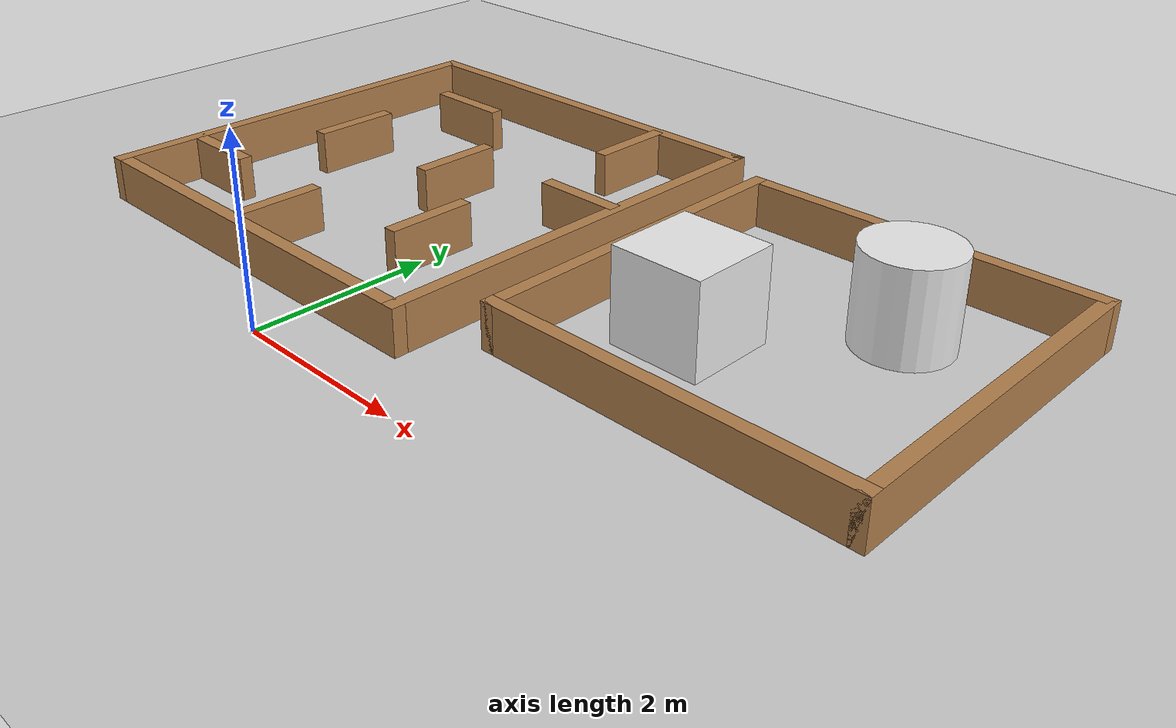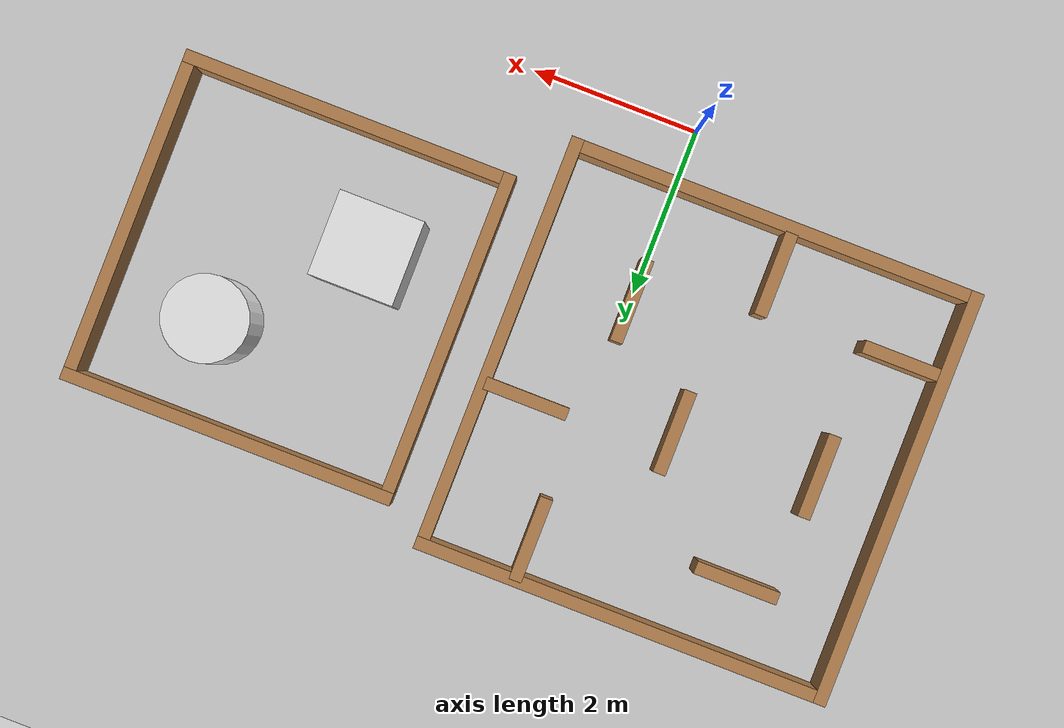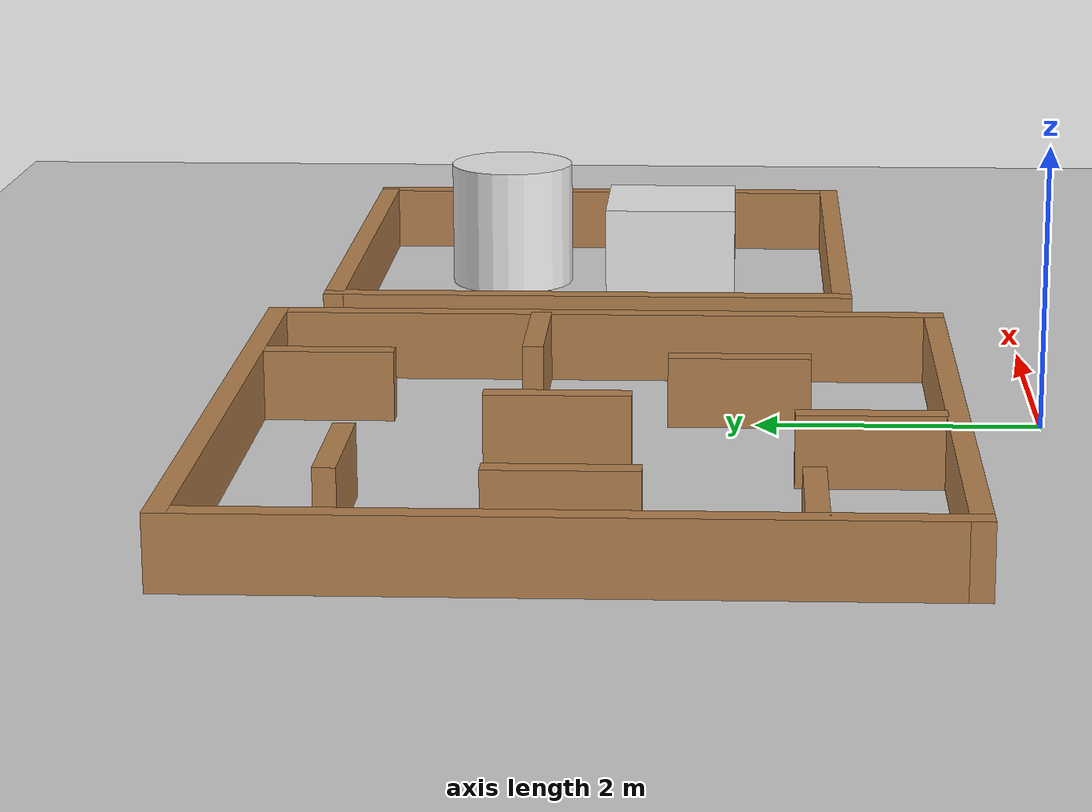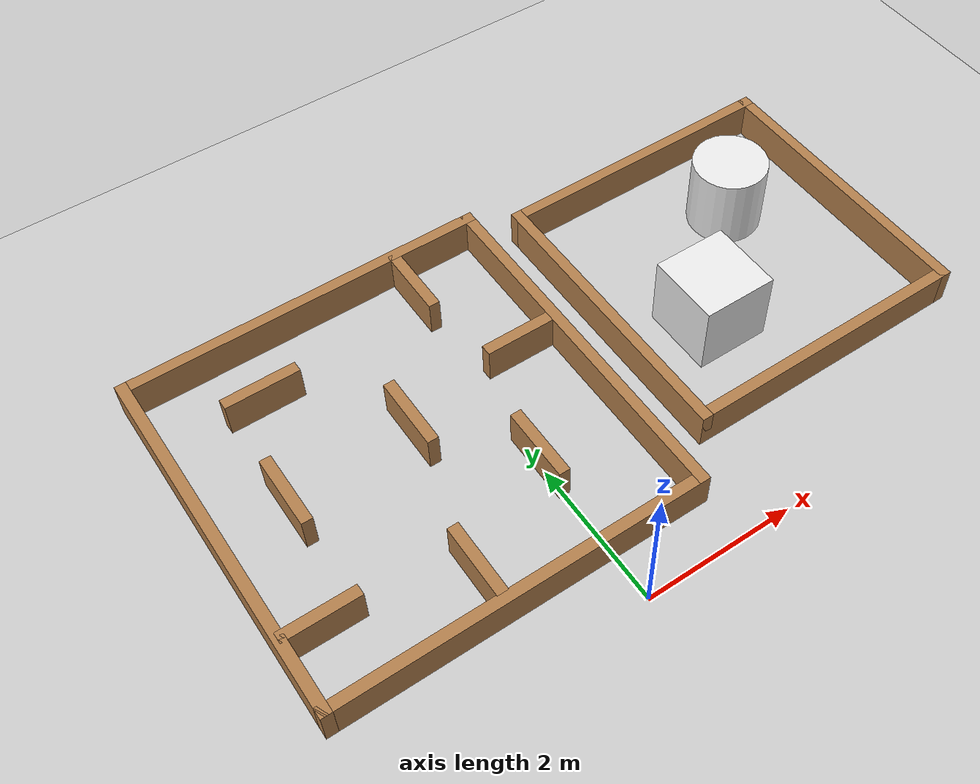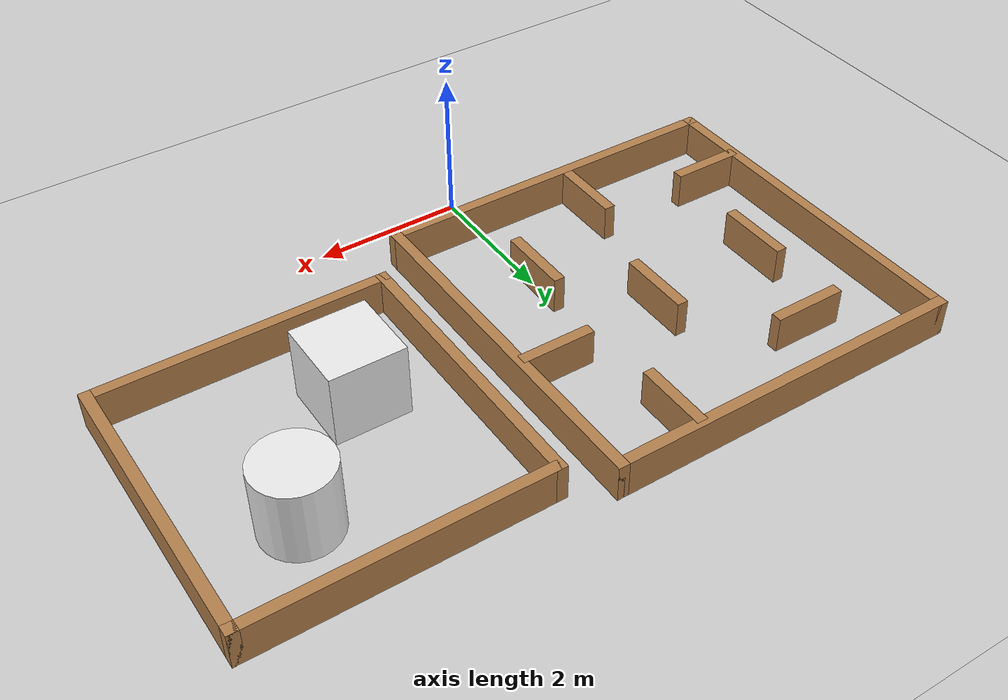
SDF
<sdf version="1.7">
 <world name="default">
  <light name="sun" type="directional">
   <pose>0 0 10 0 -0 0</pose>
   <diffuse>0.8 0.8 0.8 1</diffuse>
   <specular>0.2 0.2 0.2 1</specular>
   <attenuation>
    <range>1000</range>
    <constant>0.9</constant>
    <linear>0.01</linear>
    <quadratic>0.001</quadratic>
   </attenuation>
   <direction>-0.5 0.1 -0.9</direction>
   <spot><inner_angle>0</inner_angle><outer_angle>0</outer_angle><falloff>0</falloff></spot>
  </light>
  <model name="ground_plane">
   <static>1</static>
   <link name="link">
    <collision name="collision">
     <geometry><plane><normal>0 0 1</normal><size>100 100</size></plane></geometry>
     <surface>
      <contact><collide_bitmask>65535</collide_bitmask></contact>
      <friction><ode><mu>100</mu><mu2>50</mu2></ode></friction>
     </surface>
    </collision>
    <visual name="visual">
     <cast_shadows>0</cast_shadows>
     <geometry><plane><normal>0 0 1</normal><size>100 100</size></plane></geometry>
     <material>
      <script><uri>file://media/materials/scripts/gazebo.material</uri><name>Gazebo/Grey</name></script>
     </material>
    </visual>
   </link>
  </model>
  <gravity>0 0 -9.8</gravity>
  <magnetic_field>6e-06 2.3e-05 -4.2e-05</magnetic_field>
  <atmosphere type="adiabatic"/>
  <physics type="ode">
   <max_step_size>0.001</max_step_size>
   <real_time_factor>1</real_time_factor>
   <real_time_update_rate>1000</real_time_update_rate>
  </physics>
  <scene><ambient>0.4 0.4 0.4 1</ambient><background>0.7 0.7 0.7 1</background><shadows>1</shadows></scene>
  <spherical_coordinates>
   <surface_model>EARTH_WGS84</surface_model>
   <latitude_deg>0</latitude_deg>
   <longitude_deg>0</longitude_deg>
   <elevation>0</elevation>
   <heading_deg>0</heading_deg>
  </spherical_coordinates>
  <model name="turtlebot3_plaza">
   <pose>-1.18811 3.11626 0 0 -0 0</pose>
   <link name="Wall_0">
    <collision name="Wall_0_Collision">
     <geometry><box><size>5 0.15 0.5</size></box></geometry>
     <pose>0 0 0.25 0 -0 0</pose>
    </collision>
    <visual name="Wall_0_Visual">
     <pose>0 0 0.25 0 -0 0</pose>
     <geometry><box><size>5 0.15 0.5</size></box></geometry>
     <material>
      <script><uri>file://media/materials/scripts/gazebo.material</uri><name>Gazebo/Wood</name></script>
      <ambient>1 1 1 1</ambient>
     </material>
    </visual>
    <pose>-2.425 0 0 0 -0 1.5708</pose>
   </link>
   <link name="Wall_11">
    <collision name="Wall_11_Collision">
     <geometry><box><size>1 0.15 0.5</size></box></geometry>
     <pose>0 0 0.25 0 -0 0</pose>
    </collision>
    <visual name="Wall_11_Visual">
     <pose>0 0 0.25 0 -0 0</pose>
     <geometry><box><size>1 0.15 0.5</size></box></geometry>
     <material>
      <script><uri>file://media/materials/scripts/gazebo.material</uri><name>Gazebo/Wood</name></script>
      <ambient>1 1 1 1</ambient>
     </material>
    </visual>
    <pose>-1.937 -1.467 0 0 -0 0</pose>
   </link>
   <link name="Wall_13">
    <collision name="Wall_13_Collision">
     <geometry><box><size>1 0.15 0.5</size></box></geometry>
     <pose>0 0 0.25 0 -0 0</pose>
    </collision>
    <visual name="Wall_13_Visual">
     <pose>0 0 0.25 0 -0 0</pose>
     <geometry><box><size>1 0.15 0.5</size></box></geometry>
     <material>
      <script><uri>file://media/materials/scripts/gazebo.material</uri><name>Gazebo/Wood</name></script>
      <ambient>1 1 1 1</ambient>
     </material>
    </visual>
    <pose>-0.22 -1.866 0 0 0 -1.5708</pose>
   </link>
   <link name="Wall_15">
    <collision name="Wall_15_Collision">
     <geometry><box><size>1 0.15 0.5</size></box></geometry>
     <pose>0 0 0.25 0 -0 0</pose>
    </collision>
    <visual name="Wall_15_Visual">
     <pose>0 0 0.25 0 -0 0</pose>
     <geometry><box><size>1 0.15 0.5</size></box></geometry>
     <material>
      <script><uri>file://media/materials/scripts/gazebo.material</uri><name>Gazebo/Wood</name></script>
      <ambient>1 1 1 1</ambient>
     </material>
    </visual>
    <pose>1.195 -1.002 0 0 -0 1.5708</pose>
   </link>
   <link name="Wall_17">
    <collision name="Wall_17_Collision">
     <geometry><box><size>1 0.15 0.5</size></box></geometry>
     <pose>0 0 0.25 0 -0 0</pose>
    </collision>
    <visual name="Wall_17_Visual">
     <pose>0 0 0.25 0 -0 0</pose>
     <geometry><box><size>1 0.15 0.5</size></box></geometry>
     <material>
      <script><uri>file://media/materials/scripts/gazebo.material</uri><name>Gazebo/Wood</name></script>
      <ambient>1 1 1 1</ambient>
     </material>
    </visual>
    <pose>1.288 1.93 0 0 0 -1.5708</pose>
   </link>
   <link name="Wall_19">
    <collision name="Wall_19_Collision">
     <geometry><box><size>1 0.15 0.5</size></box></geometry>
     <pose>0 0 0.25 0 -0 0</pose>
    </collision>
    <visual name="Wall_19_Visual">
     <pose>0 0 0.25 0 -0 0</pose>
     <geometry><box><size>1 0.15 0.5</size></box></geometry>
     <material>
      <script><uri>file://media/materials/scripts/gazebo.material</uri><name>Gazebo/Wood</name></script>
      <ambient>1 1 1 1</ambient>
     </material>
    </visual>
    <pose>1.91128 0.4632 0 0 -0 0</pose>
   </link>
   <link name="Wall_2">
    <collision name="Wall_2_Collision">
     <geometry><box><size>5 0.15 0.5</size></box></geometry>
     <pose>0 0 0.25 0 -0 0</pose>
    </collision>
    <visual name="Wall_2_Visual">
     <pose>0 0 0.25 0 -0 0</pose>
     <geometry><box><size>5 0.15 0.5</size></box></geometry>
     <material>
      <script><uri>file://media/materials/scripts/gazebo.material</uri><name>Gazebo/Wood</name></script>
      <ambient>1 1 1 1</ambient>
     </material>
    </visual>
    <pose>0 2.425 0 0 -0 0</pose>
   </link>
   <link name="Wall_21">
    <collision name="Wall_21_Collision">
     <geometry><box><size>1 0.15 0.5</size></box></geometry>
     <pose>0 0 0.25 0 -0 0</pose>
    </collision>
    <visual name="Wall_21_Visual">
     <pose>0 0 0.25 0 -0 0</pose>
     <geometry><box><size>1 0.15 0.5</size></box></geometry>
     <material>
      <script><uri>file://media/materials/scripts/gazebo.material</uri><name>Gazebo/Wood</name></script>
      <ambient>1 1 1 1</ambient>
     </material>
    </visual>
    <pose>0.204 0.215 0 0 0 -1.5708</pose>
   </link>
   <link name="Wall_3">
    <collision name="Wall_3_Collision">
     <geometry><box><size>5 0.15 0.5</size></box></geometry>
     <pose>0 0 0.25 0 -0 0</pose>
    </collision>
    <visual name="Wall_3_Visual">
     <pose>0 0 0.25 0 -0 0</pose>
     <geometry><box><size>5 0.15 0.5</size></box></geometry>
     <material>
      <script><uri>file://media/materials/scripts/gazebo.material</uri><name>Gazebo/Wood</name></script>
      <ambient>1 1 1 1</ambient>
     </material>
    </visual>
    <pose>2.425 0 0 0 0 -1.5708</pose>
   </link>
   <link name="Wall_4">
    <collision name="Wall_4_Collision">
     <geometry><box><size>5 0.15 0.5</size></box></geometry>
     <pose>0 0 0.25 0 -0 0</pose>
    </collision>
    <visual name="Wall_4_Visual">
     <pose>0 0 0.25 0 -0 0</pose>
     <geometry><box><size>5 0.15 0.5</size></box></geometry>
     <material>
      <script><uri>file://media/materials/scripts/gazebo.material</uri><name>Gazebo/Wood</name></script>
      <ambient>1 1 1 1</ambient>
     </material>
    </visual>
    <pose>0 -2.425 0 0 -0 3.14159</pose>
   </link>
   <link name="Wall_7">
    <collision name="Wall_7_Collision">
     <geometry><box><size>1 0.15 0.5</size></box></geometry>
     <pose>0 0 0.25 0 -0 0</pose>
    </collision>
    <visual name="Wall_7_Visual">
     <pose>0 0 0.25 0 -0 0</pose>
     <geometry><box><size>1 0.15 0.5</size></box></geometry>
     <material>
      <script><uri>file://media/materials/scripts/gazebo.material</uri><name>Gazebo/Wood</name></script>
      <ambient>1 1 1 1</ambient>
     </material>
    </visual>
    <pose>-1.064 1.548 0 0 -0 0</pose>
   </link>
   <link name="Wall_9">
    <collision name="Wall_9_Collision">
     <geometry><box><size>1 0.15 0.5</size></box></geometry>
     <pose>0 0 0.25 0 -0 0</pose>
    </collision>
    <visual name="Wall_9_Visual">
     <pose>0 0 0.25 0 -0 0</pose>
     <geometry><box><size>1 0.15 0.5</size></box></geometry>
     <material>
      <script><uri>file://media/materials/scripts/gazebo.material</uri><name>Gazebo/Wood</name></script>
      <ambient>1 1 1 1</ambient>
     </material>
    </visual>
    <pose>-1.502 0.092 0 0 0 -1.5708</pose>
   </link>
   <static>1</static>
  </model>
  <model name="turtlebot3_square">
   <pose>3.73136 3.2723 0 0 -0 0</pose>
   <link name="Wall_0">
    <collision name="Wall_0_Collision">
     <geometry><box><size>4 0.15 0.5</size></box></geometry>
     <pose>0 0 0.25 0 -0 0</pose>
    </collision>
    <visual name="Wall_0_Visual">
     <pose>0 0 0.25 0 -0 0</pose>
     <geometry><box><size>4 0.15 0.5</size></box></geometry>
     <material>
      <script><uri>file://media/materials/scripts/gazebo.material</uri><name>Gazebo/Wood</name></script>
      <ambient>1 1 1 1</ambient>
     </material>
    </visual>
    <pose>0 1.925 0 0 -0 0</pose>
   </link>
   <link name="Wall_2">
    <collision name="Wall_2_Collision">
     <geometry><box><size>4 0.15 0.5</size></box></geometry>
     <pose>0 0 0.25 0 -0 0</pose>
    </collision>
    <visual name="Wall_2_Visual">
     <pose>0 0 0.25 0 -0 0</pose>
     <geometry><box><size>4 0.15 0.5</size></box></geometry>
     <material>
      <script><uri>file://media/materials/scripts/gazebo.material</uri><name>Gazebo/Wood</name></script>
      <ambient>1 1 1 1</ambient>
     </material>
    </visual>
    <pose>-1.925 0 0 0 0 -1.5708</pose>
   </link>
   <link name="Wall_3">
    <collision name="Wall_3_Collision">
     <geometry><box><size>4 0.15 0.5</size></box></geometry>
     <pose>0 0 0.25 0 -0 0</pose>
    </collision>
    <visual name="Wall_3_Visual">
     <pose>0 0 0.25 0 -0 0</pose>
     <geometry><box><size>4 0.15 0.5</size></box></geometry>
     <material>
      <script><uri>file://media/materials/scripts/gazebo.material</uri><name>Gazebo/Wood</name></script>
      <ambient>1 1 1 1</ambient>
     </material>
    </visual>
    <pose>0 -1.925 0 0 -0 0</pose>
   </link>
   <link name="Wall_4">
    <collision name="Wall_4_Collision">
     <geometry><box><size>4 0.15 0.5</size></box></geometry>
     <pose>0 0 0.25 0 -0 0</pose>
    </collision>
    <visual name="Wall_4_Visual">
     <pose>0 0 0.25 0 -0 0</pose>
     <geometry><box><size>4 0.15 0.5</size></box></geometry>
     <material>
      <script><uri>file://media/materials/scripts/gazebo.material</uri><name>Gazebo/Wood</name></script>
      <ambient>1 1 1 1</ambient>
     </material>
    </visual>
    <pose>1.925 0 0 0 -0 1.5708</pose>
   </link>
   <static>1</static>
  </model>
  <model name="unit_cylinder_and_square">
   <link name="link">
    <inertial>
     <mass>1</mass>
     <inertia><ixx>0.145833</ixx><ixy>0</ixy><ixz>0</ixz><iyy>0.145833</iyy><iyz>0</iyz><izz>0.125</izz></inertia>
    </inertial>
    <visual name="visual">
     <geometry><cylinder><radius>0.5</radius><length>1</length></cylinder></geometry>
     <material>
      <script><name>Gazebo/White</name><uri>file://media/materials/scripts/gazebo.material</uri></script>
      <shader type="pixel"><normal_map>__default__</normal_map></shader>
      <ambient>1 1 1 1</ambient>
      <diffuse>1 1 1 1</diffuse>
      <specular>0 0 0 1</specular>
      <emissive>0 0 0 1</emissive>
     </material>
    </visual>
    <collision name="collision">
     <geometry><cylinder><radius>0.5</radius><length>1</length></cylinder></geometry>
     <surface>
      <friction>
       <ode><mu>1</mu><mu2>1</mu2><fdir1>0 0 0</fdir1><slip1>0</slip1><slip2>0</slip2></ode>
       <torsional>
        <coefficient>1</coefficient>
        <patch_radius>0</patch_radius>
        <surface_radius>0</surface_radius>
        <use_patch_radius>1</use_patch_radius>
        <ode><slip>0</slip></ode>
       </torsional>
      </friction>
      <bounce><restitution_coefficient>0</restitution_coefficient><threshold>1e+06</threshold></bounce>
      <contact>
       <collide_without_contact>0</collide_without_contact>
       <collide_without_contact_bitmask>1</collide_without_contact_bitmask>
       <collide_bitmask>1</collide_bitmask>
       <ode>
        <soft_cfm>0</soft_cfm>
        <soft_erp>0.2</soft_erp>
        <kp>1e+13</kp>
        <kd>1</kd>
        <max_vel>0.01</max_vel>
        <min_depth>0</min_depth>
       </ode>
       <bullet>
        <split_impulse>1</split_impulse>
        <split_impulse_penetration_threshold>-0.01</split_impulse_penetration_threshold>
        <soft_cfm>0</soft_cfm>
        <soft_erp>0.2</soft_erp>
        <kp>1e+13</kp>
        <kd>1</kd>
       </bullet>
      </contact>
     </surface>
    </collision>
   </link>
   <link name="link_0">
    <inertial>
     <mass>1</mass>
     <inertia>
      <ixx>0.166667</ixx>
      <ixy>0</ixy>
      <ixz>0</ixz>
      <iyy>0.166667</iyy>
      <iyz>0</iyz>
      <izz>0.166667</izz>
     </inertia>
    </inertial>
    <pose>-1.37547 -1.36532 0 0 -0 0</pose>
    <visual name="visual">
     <geometry><box><size>1 1 1</size></box></geometry>
     <material>
      <lighting>1</lighting>
      <script><uri>file://media/materials/scripts/gazebo.material</uri><name>Gazebo/White</name></script>
      <shader type="pixel"><normal_map>__default__</normal_map></shader>
      <ambient>1 1 1 1</ambient>
      <diffuse>1 1 1 1</diffuse>
      <specular>0 0 0 1</specular>
      <emissive>0 0 0 1</emissive>
     </material>
    </visual>
    <collision name="collision">
     <geometry><box><size>1 1 1</size></box></geometry>
     <surface>
      <friction>
       <ode><mu>1</mu><mu2>1</mu2><fdir1>0 0 0</fdir1><slip1>0</slip1><slip2>0</slip2></ode>
       <torsional>
        <coefficient>1</coefficient>
        <patch_radius>0</patch_radius>
        <surface_radius>0</surface_radius>
        <use_patch_radius>1</use_patch_radius>
        <ode><slip>0</slip></ode>
       </torsional>
      </friction>
      <bounce><restitution_coefficient>0</restitution_coefficient><threshold>1e+06</threshold></bounce>
      <contact>
       <collide_without_contact>0</collide_without_contact>
       <collide_without_contact_bitmask>1</collide_without_contact_bitmask>
       <collide_bitmask>1</collide_bitmask>
       <ode>
        <soft_cfm>0</soft_cfm>
        <soft_erp>0.2</soft_erp>
        <kp>1e+13</kp>
        <kd>1</kd>
        <max_vel>0.01</max_vel>
        <min_depth>0</min_depth>
       </ode>
       <bullet>
        <split_impulse>1</split_impulse>
        <split_impulse_penetration_threshold>-0.01</split_impulse_penetration_threshold>
        <soft_cfm>0</soft_cfm>
        <soft_erp>0.2</soft_erp>
        <kp>1e+13</kp>
        <kd>1</kd>
       </bullet>
      </contact>
     </surface>
    </collision>
   </link>
   <static>1</static>
   <pose>4.34563 4.02616 0.5 0 -0 0</pose>
  </model>
 </world>
</sdf>
